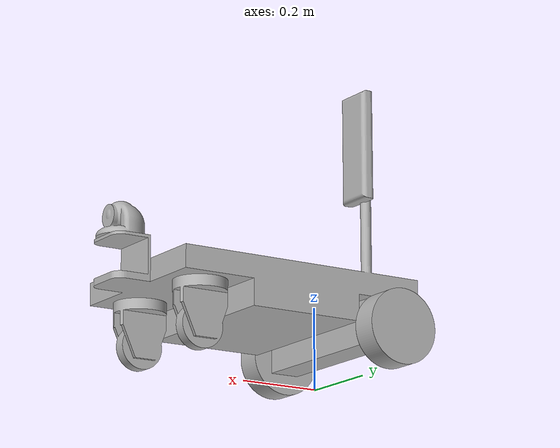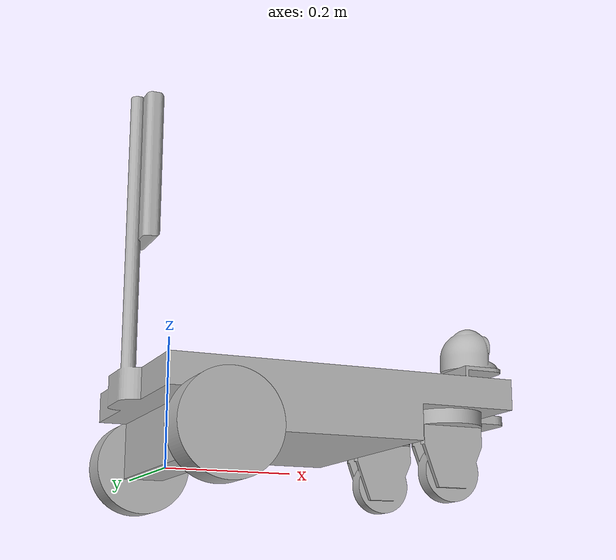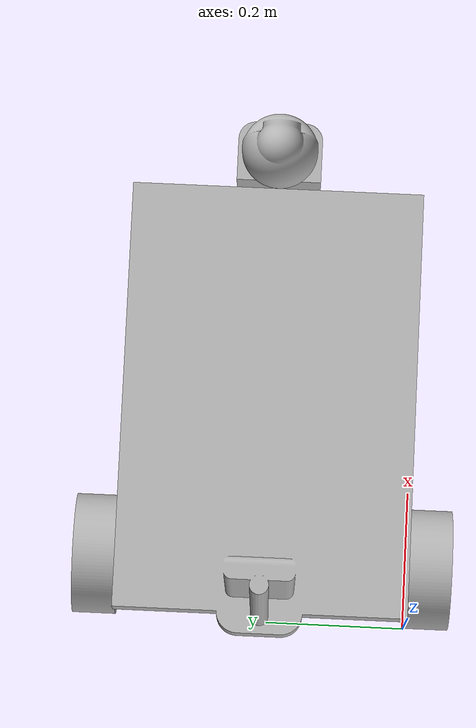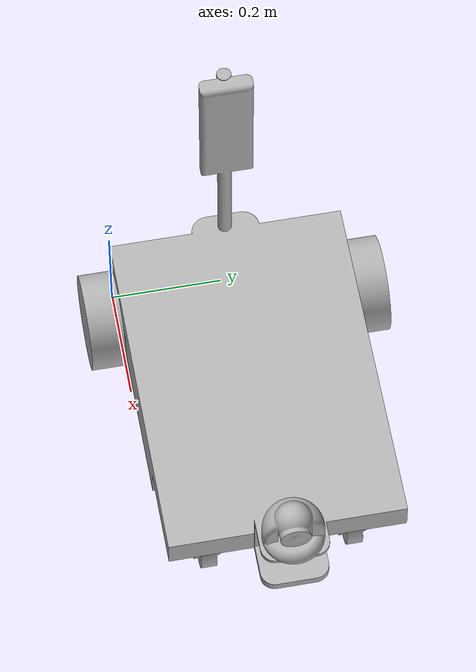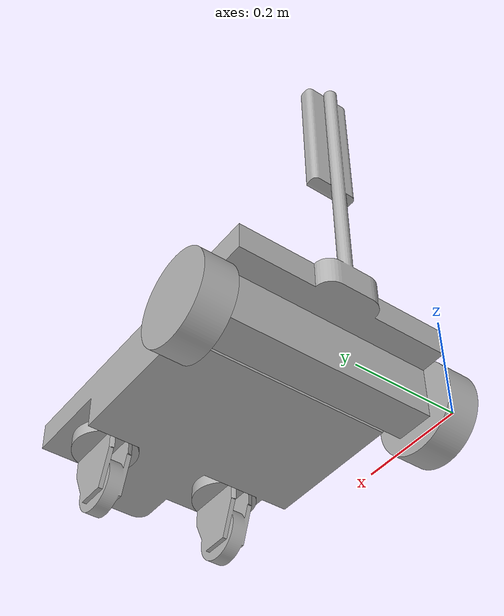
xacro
<?xml version="1.0"?>
<robot xmlns:xacro="http://www.ros.org/wiki/xacro"  name="robot">

    <xacro:include filename="robot_core.xacro" />
    <xacro:include filename="$(find agv_lince)/description/robot.gazebo" />
    <xacro:include filename="ros2_control.xacro" />
    <xacro:include filename="lidar.xacro" />

</robot>

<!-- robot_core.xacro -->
<robot xmlns:xacro="http://www.ros.org/wiki/xacro" >

    <xacro:include filename="$(find agv_lince)/description/robot.trans" />
    <xacro:include filename="$(find agv_lince)/description/robot.gazebo" />

    <!-- MATERIALS -->
    <material name="silver">
        <color rgba="0.700 0.700 0.700 1.000"/>
    </material>

    <!-- BASE LINK -->
    <link name="base_link">

    </link>

    <!-- CHASSIS LINK -->
    <joint name="chassi_joint" type="fixed">
        <origin rpy="0 0 0" xyz="0 0 0"/>
        <parent link="base_link"/>
        <child link="chassi"/>
    </joint>

    <link name="chassi">
        <inertial>
            <origin xyz="0.26852392239431533 0.20950930054137695 0.1415018788660424" rpy="0 0 0"/>
            <mass value="196.71182920620697"/>
            <inertia ixx="4.100554" iyy="6.971657" izz="8.324299" ixy="0.000441" iyz="-0.000438" ixz="0.423937"/>
        </inertial>
        <visual>
            <origin xyz="0 0 0" rpy="0 0 0"/>
            <geometry>
                <mesh filename="file://$(find agv_lince)/meshes/chassi.stl" scale="0.001 0.001 0.001"/>
            </geometry>
            <material name="silver"/>
        </visual>
        <collision>
            <origin xyz="0 0 0" rpy="0 0 0"/>
            <geometry>
                <mesh filename="file://$(find agv_lince)/meshes/chassi.stl" scale="0.001 0.001 0.001"/>
            </geometry>
        </collision>
    </link>

    <!-- Left Caster -->
    <joint name="left_caster_joint" type="fixed">
        <origin xyz="0.5255 0.336269 0.1322" rpy="0 0 0"/>
        <parent link="chassi"/>
        <child link="left_caster"/>
    </joint>

    <link name="left_caster">
        <inertial>
            <origin xyz="0.0002703596792763552 2.5251487542454765e-05 -0.06165617323973693" rpy="0 0 0"/>
            <mass value="5.442426439867197"/>
            <inertia ixx="0.013498" iyy="0.015226" izz="0.00705" ixy="-1e-06" iyz="1e-05" ixz="6.6e-05"/>
        </inertial>
        <visual>
            <origin xyz="-0.5255 -0.336269 -0.1322" rpy="0 0 0"/>
            <geometry>
                <mesh filename="file://$(find agv_lince)/meshes/left_caster_1.stl" scale="0.001 0.001 0.001"/>
            </geometry>
            <material name="silver"/>
        </visual>
        <collision>
            <origin xyz="-0.5255 -0.336269 -0.1322" rpy="0 0 0"/>
            <geometry>
                <mesh filename="file://$(find agv_lince)/meshes/left_caster_1.stl" scale="0.001 0.001 0.001"/>
            </geometry>
        </collision>
    </link>

    <!-- Right Caster -->
    <joint name="right_caster_joint" type="fixed">
        <origin xyz="0.5255 0.075954 0.1322" rpy="0 0 0"/>
        <parent link="chassi"/>
        <child link="right_caster"/>
    </joint>

    <link name="right_caster">
        <inertial>
            <origin xyz="0.00027035967927580007 0.00033953726364627235 -0.06165617323973689" rpy="0 0 0"/>
                <mass value="5.442426439867197"/>
            <inertia ixx="0.013498" iyy="0.015226" izz="0.00705" ixy="-1e-06" iyz="1e-05" ixz="6.6e-05"/>
        </inertial>
        <visual>
            <origin xyz="-0.5255 -0.075954 -0.1322" rpy="0 0 0"/>
            <geometry>
                <mesh filename="file://$(find agv_lince)/meshes/right_caster_3.stl" scale="0.001 0.001 0.001"/>
            </geometry>
            <material name="silver"/>
        </visual>
        <collision>
            <origin xyz="-0.5255 -0.075954 -0.1322" rpy="0 0 0"/>
            <geometry>
                <mesh filename="file://$(find agv_lince)/meshes/right_caster_3.stl" scale="0.001 0.001 0.001"/>
            </geometry>
        </collision>
    </link>

    <!-- Left Wheel -->
    <joint name="left_wheel_joint" type="continuous">
        <origin xyz="0.086098 0.414 0.0522" rpy="0 0 0"/>
        <parent link="chassi"/>
        <child link="left_wheel"/>
        <axis xyz="0.0 1.0 0.0"/>
    </joint>

    <link name="left_wheel">
    <inertial>
        <origin xyz="-2.7028745609725124e-07 0.03596400994364629 -6.938893903907228e-18" rpy="0 0 0"/>
        <mass value="11.320743431486168"/>
        <inertia ixx="0.024546" iyy="0.04182" izz="0.024546" ixy="-0.0" iyz="-0.0" ixz="0.0"/>
    </inertial>
    <visual>
        <origin xyz="-0.086098 -0.414 -0.0522" rpy="0 0 0"/>
        <geometry>
            <mesh filename="file://$(find agv_lince)/meshes/left_wheel_1.stl" scale="0.001 0.001 0.001"/>
        </geometry>
        <material name="silver"/>
    </visual>
    <collision>
        <origin xyz="-0.086098 -0.414 -0.0522" rpy="0 0 0"/>
        <geometry>
            <mesh filename="file://$(find agv_lince)/meshes/left_wheel_1.stl" scale="0.001 0.001 0.001"/>
        </geometry>
    </collision>
    </link>

    <!-- Right Wheel -->
    <joint name="right_wheel_joint" type="continuous">
        <origin xyz="0.082222 0.005 0.066" rpy="0 0 0"/>
        <parent link="chassi"/>
        <child link="right_wheel"/>
        <axis xyz="0.0 1.0 0.0"/>
    </joint>

    <link name="right_wheel">
    <inertial>
        <origin xyz="-1.1151555552590953e-07 -0.03596400940058405 0.0" rpy="0 0 0"/>
        <mass value="11.32074361520196"/>
        <inertia ixx="0.024546" iyy="0.04182" izz="0.024546" ixy="-0.0" iyz="-0.0" ixz="0.0"/>
    </inertial>
    <visual>
        <origin xyz="-0.082222 -0.005 -0.066" rpy="0 0 0"/>
        <geometry>
            <mesh filename="file://$(find agv_lince)/meshes/right_wheel_1.stl" scale="0.001 0.001 0.001"/>
        </geometry>
        <material name="silver"/>
    </visual>
    <collision>
        <origin xyz="-0.082222 -0.005 -0.066" rpy="0 0 0"/>
        <geometry>
            <mesh filename="file://$(find agv_lince)/meshes/right_wheel_1.stl" scale="0.001 0.001 0.001"/>
        </geometry>
    </collision>
    </link>

    <!-- Camera -->

</robot>

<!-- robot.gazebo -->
<robot xmlns:xacro="http://www.ros.org/wiki/xacro" >

<xacro:property name="body_color" value="Gazebo/Silver" />

    <gazebo>
        <plugin name="control" filename="libgazebo_ros_control.so"/>
    </gazebo>

    <gazebo reference="chassi">
        <material>${body_color}</material>
    </gazebo>

    <gazebo reference="right_wheel">
        <material>${body_color}</material>
    </gazebo>

    <gazebo reference="left_wheel">
        <material>${body_color}</material>
    </gazebo>

    <gazebo reference="left_caster">
        <material>${body_color}</material>
        <mu1>0.001</mu1>
        <mu2>0.001</mu2>
    </gazebo>

    <gazebo reference="right_caster">
        <material>${body_color}</material>
        <mu1>0.001</mu1>
        <mu2>0.001</mu2>
    </gazebo>

    <gazebo reference="camera_1">
        <material>${body_color}</material>
    </gazebo>

</robot>

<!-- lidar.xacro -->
<robot xmlns:xacro="http://www.ros.org/wiki/xacro" >

    <joint name="laser_joint" type="fixed">
        <origin xyz="0.65505 0.2095 0.2277" rpy="0 0 0"/>
        <parent link="chassi"/>
        <child link="laser_frame"/>
    </joint>

    <link name="laser_frame">
        <inertial>
            <origin xyz="-0.006290550800018169 -3.1499090842684874e-05 0.036766020010442935" rpy="0 0 0"/>
            <mass value="3.5762687778267663"/>
            <inertia ixx="0.003848" iyy="0.003414" izz="0.004063" ixy="6e-06" iyz="1e-06" ixz="6.9e-05"/>
        </inertial>
        <visual>
            <origin xyz="-0.65505 -0.2095 -0.2277" rpy="0 0 0"/>
            <geometry>
                <mesh filename="file://$(find agv_lince)/meshes/camera_1.stl" scale="0.001 0.001 0.001"/>
            </geometry>
            <material name="silver"/>
        </visual>
        <collision>
            <origin xyz="-0.65505 -0.2095 -0.2277" rpy="0 0 0"/>
            <geometry>
                <mesh filename="file:/;$(find agv_lince)/meshes/camera_1.stl" scale="0.001 0.001 0.001"/>
            </geometry>
        </collision>
    </link>

    <gazebo reference="laser_frame">
        <sensor name="laser" type="ray">
            <pose> 0 0 0 0 0 0 </pose>
            <visualize>true</visualize>
            <update_rate>10</update_rate>
            <ray>
                <scan>
                    <horizontal>
                        <samples>360</samples>
                        <min_angle>-3.14</min_angle>
                        <max_angle>3.14</max_angle>
                    </horizontal>
                </scan>
                <range>
                    <min>0.3</min>
                    <max>12</max>
                </range>
            </ray>
            <plugin name="laser_controller" filename="libgazebo_ros_ray_sensor.so">
                <ros>
                    <argument>~/out:=scan</argument>
                </ros>
                <output_type>sensor_msgs/LaserScan</output_type>
                <frame_name>laser_frame</frame_name>
            </plugin>
        </sensor>
    </gazebo>

</robot>
